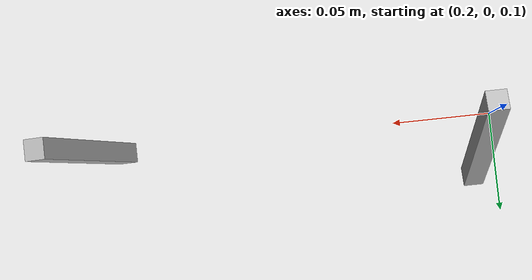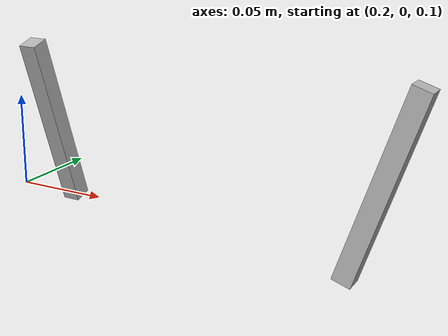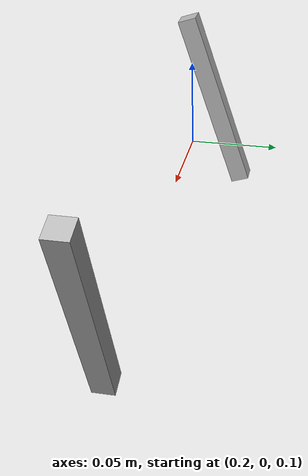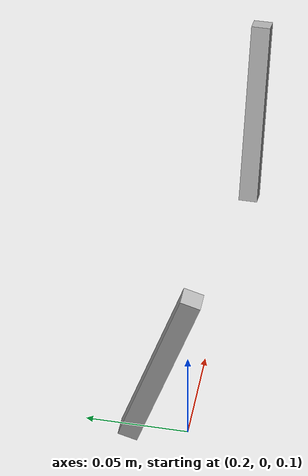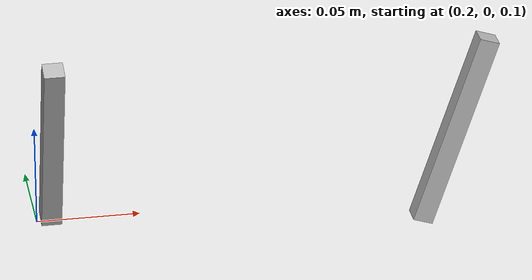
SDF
<?xml version="1.0" ?>

<sdf version="1.5">
  <world name="default">
    <include>
      <uri>model://sun</uri>
    </include>

    <model name='pendulum_x_axis'>
      <pose>0.21000000000000002 0 0.18000000000000002  0.3141592653589793 0 0</pose>
      <link name="link">
        <pose>0 0 -0.05  0 0 0</pose>
        <inertial>
          <mass>0.027000000000000003</mass>
          <inertia>
            <ixx>2.2725000000000007e-05</ixx>
            <iyy>2.2725000000000007e-05</iyy>
            <izz>4.500000000000001e-07</izz>
            <ixy>0.0</ixy>
            <ixz>0.0</ixz>
            <iyz>0.0</iyz>
          </inertia>
        </inertial>
        <collision name="collision">
          <geometry>
            <box>
              <size>0.01 0.01 0.1</size>
            </box>
          </geometry>
        </collision>
        <visual name="visual">
          <geometry>
            <box>
              <size>0.01 0.01 0.1</size>
            </box>
          </geometry>
        </visual>
      </link>
      <joint name="joint" type="revolute">
        <pose>0 0 0.05  0 0 0</pose>
        <parent>world</parent>
        <child>link</child>
        <axis>
          <xyz>1 0 0</xyz>
        </axis>
      </joint>
    </model>

    <model name='pendulum_y_axis'>
      <pose>0.42000000000000004 0 0.18000000000000002  0 0.3141592653589793 0</pose>
      <link name="link">
        <pose>0 0 -0.05  0 0 0</pose>
        <inertial>
          <mass>0.027000000000000003</mass>
          <inertia>
            <ixx>2.2725000000000007e-05</ixx>
            <iyy>2.2725000000000007e-05</iyy>
            <izz>4.500000000000001e-07</izz>
            <ixy>0.0</ixy>
            <ixz>0.0</ixz>
            <iyz>0.0</iyz>
          </inertia>
        </inertial>
        <collision name="collision">
          <geometry>
            <box>
              <size>0.01 0.01 0.1</size>
            </box>
          </geometry>
        </collision>
        <visual name="visual">
          <geometry>
            <box>
              <size>0.01 0.01 0.1</size>
            </box>
          </geometry>
        </visual>
      </link>
      <joint name="joint" type="revolute">
        <pose>0 0 0.05  0 0 0</pose>
        <parent>world</parent>
        <child>link</child>
        <axis>
          <xyz>0 1 0</xyz>
        </axis>
      </joint>
    </model>

  </world>
</sdf>
